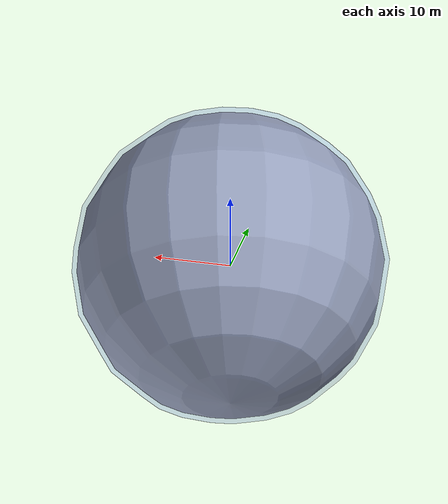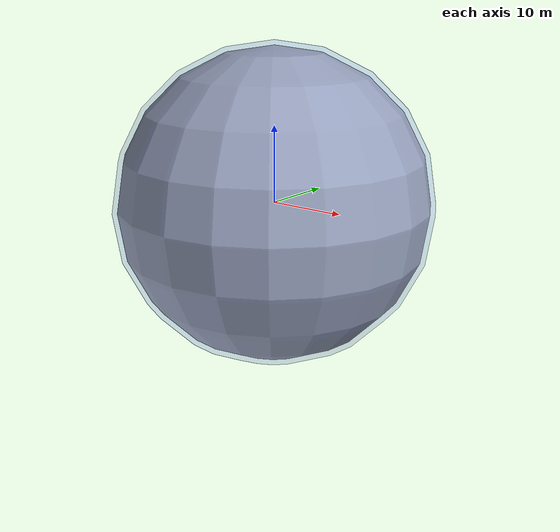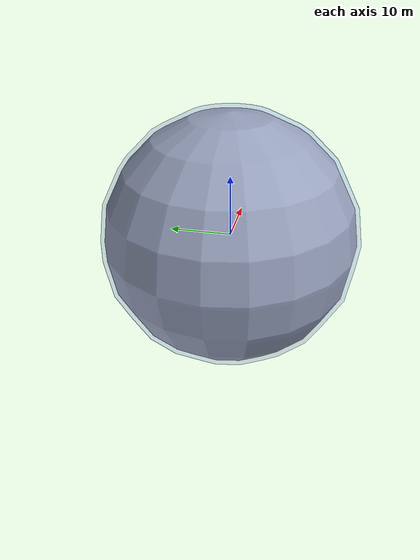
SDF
<?xml version="1.0" ?>
<sdf version="1.6">
  <model name="earth">
    <static>true</static>
    <link name="earth_link">
      <visual name="earth_day_visual">
        <geometry><sphere><radius>20.0</radius></sphere></geometry>
        <material><script><uri>model://earth/materials/scripts</uri><uri>model://earth/materials/textures</uri><name>ASTRO/EarthDay</name></script></material>
      </visual>
      <visual name="cloud_layer_visual">
        <geometry><sphere><radius>20.25</radius></sphere></geometry>
        <transparency>0.55</transparency>
        <material><script><uri>model://earth/materials/scripts</uri><uri>model://earth/materials/textures</uri><name>ASTRO/EarthClouds</name></script></material>
      </visual>
      <visual name="atmosphere_shell">
        <geometry><sphere><radius>20.65</radius></sphere></geometry>
        <transparency>0.82</transparency>
        <material><ambient>0.15 0.35 0.9 0.25</ambient><diffuse>0.15 0.35 0.9 0.20</diffuse></material>
      </visual>
    </link>
  </model>
</sdf>
